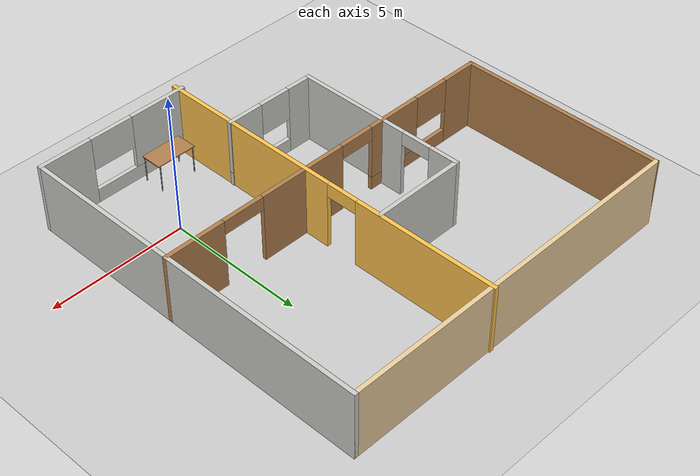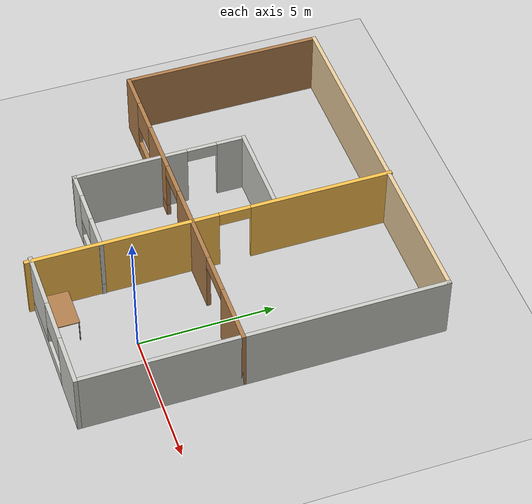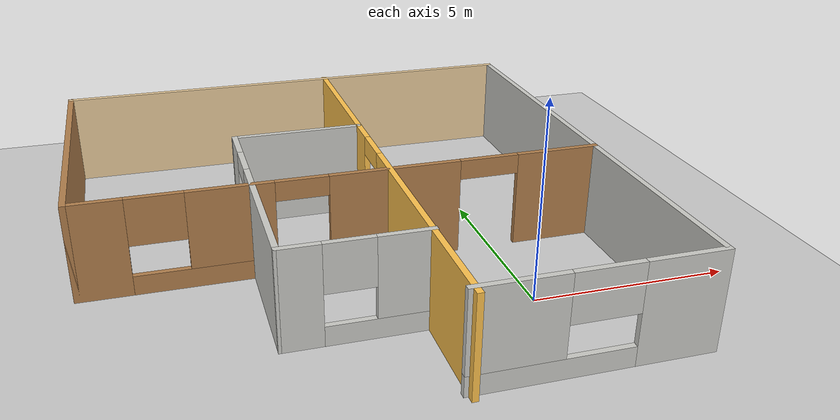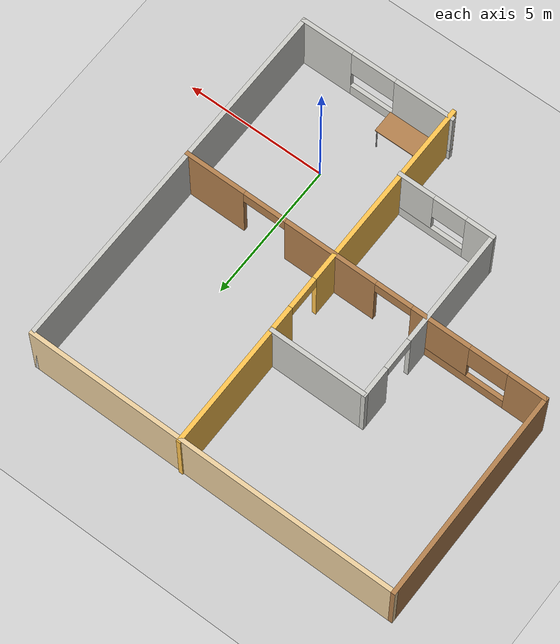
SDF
<sdf version="1.6">
 <world name="default">
  <light name="sun" type="directional">
   <pose>0 0 10 0 -0 0</pose>
   <diffuse>0.8 0.8 0.8 1</diffuse>
   <specular>0.2 0.2 0.2 1</specular>
   <attenuation>
    <range>1000</range>
    <constant>0.9</constant>
    <linear>0.01</linear>
    <quadratic>0.001</quadratic>
   </attenuation>
   <direction>-0.5 0.1 -0.9</direction>
  </light>
  <model name="ground_plane">
   <static>1</static>
   <link name="link">
    <collision name="collision">
     <geometry><plane><normal>0 0 1</normal><size>100 100</size></plane></geometry>
     <surface><friction><ode><mu>100</mu><mu2>50</mu2></ode></friction></surface>
    </collision>
    <visual name="visual">
     <cast_shadows>0</cast_shadows>
     <geometry><plane><normal>0 0 1</normal><size>100 100</size></plane></geometry>
     <material>
      <script><uri>file://media/materials/scripts/gazebo.material</uri><name>Gazebo/Grey</name></script>
     </material>
    </visual>
   </link>
  </model>
  <gravity>0 0 -9.8</gravity>
  <magnetic_field>6e-06 2.3e-05 -4.2e-05</magnetic_field>
  <atmosphere type="adiabatic"/>
  <physics name="default_physics" default="0" type="ode">
   <max_step_size>0.001</max_step_size>
   <real_time_factor>1</real_time_factor>
   <real_time_update_rate>1000</real_time_update_rate>
  </physics>
  <scene><ambient>0.4 0.4 0.4 1</ambient><background>0.7 0.7 0.7 1</background><shadows>1</shadows></scene>
  <audio><device>default</device></audio>
  <spherical_coordinates>
   <surface_model>EARTH_WGS84</surface_model>
   <latitude_deg>0</latitude_deg>
   <longitude_deg>0</longitude_deg>
   <elevation>0</elevation>
   <heading_deg>0</heading_deg>
  </spherical_coordinates>
  <model name="Robot_House">
   <pose>-3.73296 3.60098 0 0 -0 0</pose>
   <link name="Wall_0">
    <collision name="Wall_0_Collision">
     <geometry><box><size>13.25 0.15 2.5</size></box></geometry>
     <pose>0 0 1.25 0 -0 0</pose>
    </collision>
    <visual name="Wall_0_Visual">
     <pose>0 0 1.25 0 -0 0</pose>
     <geometry><box><size>13.25 0.15 2.5</size></box></geometry>
     <material>
      <script><uri>file://media/materials/scripts/gazebo.material</uri><name>Gazebo/Grey</name></script>
      <ambient>0.921569 0.807843 0.615686 1</ambient>
     </material>
     <meta><layer>0</layer></meta>
    </visual>
    <pose>-0 6.627 0 0 -0 0</pose>
   </link>
   <link name="Wall_1">
    <collision name="Wall_1_Collision">
     <geometry><box><size>13.263 0.15 2.5</size></box></geometry>
     <pose>0 0 1.25 0 -0 0</pose>
    </collision>
    <visual name="Wall_1_Visual">
     <pose>0 0 1.25 0 -0 0</pose>
     <geometry><box><size>13.263 0.15 2.5</size></box></geometry>
     <material>
      <script><uri>file://media/materials/scripts/gazebo.material</uri><name>Gazebo/CeilingTiled</name></script>
      <ambient>0.921569 0.807843 0.615686 1</ambient>
     </material>
     <meta><layer>0</layer></meta>
    </visual>
    <pose>6.55 0.0705 0 0 -0 -1.5708</pose>
   </link>
   <link name="Wall_20">
    <pose>1.055 0 0 0 -0 1.5708</pose>
    <visual name="Wall_20_Visual_0">
     <pose>-3.24261 0 1.25 0 -0 0</pose>
     <geometry><box><size>7.01478 0.15 2.5</size></box></geometry>
     <material>
      <script><uri>file://media/materials/scripts/gazebo.material</uri><name>Gazebo/Grey</name></script>
      <ambient>1 0.764706 0.305882 1</ambient>
     </material>
     <meta><layer>0</layer></meta>
    </visual>
    <collision name="Wall_20_Collision_0">
     <geometry><box><size>7.01478 0.15 2.5</size></box></geometry>
     <pose>-3.24261 0 1.25 0 -0 0</pose>
    </collision>
    <visual name="Wall_20_Visual_1">
     <pose>4.08964 0 1.25 0 -0 0</pose>
     <geometry><box><size>5.32073 0.15 2.5</size></box></geometry>
     <material>
      <script><uri>file://media/materials/scripts/gazebo.material</uri><name>Gazebo/Grey</name></script>
      <ambient>1 0.764706 0.305882 1</ambient>
     </material>
     <meta><layer>0</layer></meta>
    </visual>
    <collision name="Wall_20_Collision_1">
     <geometry><box><size>5.32073 0.15 2.5</size></box></geometry>
     <pose>4.08964 0 1.25 0 -0 0</pose>
    </collision>
    <visual name="Wall_20_Visual_2">
     <pose>0.847025 0 2.25 0 -0 0</pose>
     <geometry><box><size>1.1645 0.15 0.5</size></box></geometry>
     <material>
      <script><uri>file://media/materials/scripts/gazebo.material</uri><name>Gazebo/Grey</name></script>
      <ambient>1 0.764706 0.305882 1</ambient>
     </material>
     <meta><layer>0</layer></meta>
    </visual>
    <collision name="Wall_20_Collision_2">
     <geometry><box><size>1.1645 0.15 0.5</size></box></geometry>
     <pose>0.847025 0 2.25 0 -0 0</pose>
    </collision>
   </link>
   <link name="Wall_22">
    <pose>-2.318 -0.839 0 0 -0 -1.5708</pose>
    <visual name="Wall_22_Visual_0">
     <pose>-2.68981 0 1.25 0 -0 0</pose>
     <geometry><box><size>1.12039 0.15 2.5</size></box></geometry>
     <material>
      <script><uri>file://media/materials/scripts/gazebo.material</uri><name>Gazebo/CeilingTiled</name></script>
      <ambient>0.921569 0.807843 0.615686 1</ambient>
     </material>
     <meta><layer>0</layer></meta>
    </visual>
    <collision name="Wall_22_Collision_0">
     <geometry><box><size>1.12039 0.15 2.5</size></box></geometry>
     <pose>-2.68981 0 1.25 0 -0 0</pose>
    </collision>
    <visual name="Wall_22_Visual_1">
     <pose>1.11619 0 1.25 0 -0 0</pose>
     <geometry><box><size>4.26761 0.15 2.5</size></box></geometry>
     <material>
      <script><uri>file://media/materials/scripts/gazebo.material</uri><name>Gazebo/CeilingTiled</name></script>
      <ambient>0.921569 0.807843 0.615686 1</ambient>
     </material>
     <meta><layer>0</layer></meta>
    </visual>
    <collision name="Wall_22_Collision_1">
     <geometry><box><size>4.26761 0.15 2.5</size></box></geometry>
     <pose>1.11619 0 1.25 0 -0 0</pose>
    </collision>
    <visual name="Wall_22_Visual_2">
     <pose>-1.57361 0 2.25 0 -0 0</pose>
     <geometry><box><size>1.112 0.15 0.5</size></box></geometry>
     <material>
      <script><uri>file://media/materials/scripts/gazebo.material</uri><name>Gazebo/CeilingTiled</name></script>
      <ambient>0.921569 0.807843 0.615686 1</ambient>
     </material>
     <meta><layer>0</layer></meta>
    </visual>
    <collision name="Wall_22_Collision_2">
     <geometry><box><size>1.112 0.15 0.5</size></box></geometry>
     <pose>-1.57361 0 2.25 0 -0 0</pose>
    </collision>
   </link>
   <link name="Wall_23">
    <pose>-0.62 -4.0195 0 0 -0 -0.003239</pose>
    <visual name="Wall_23_Visual_0">
     <pose>-1.26198 0 1.25 0 -0 0</pose>
     <geometry><box><size>1.02235 0.15 2.5</size></box></geometry>
     <material>
      <script><uri>file://media/materials/scripts/gazebo.material</uri><name>Gazebo/CeilingTiled</name></script>
      <ambient>0.435294 0.796078 0.67451 1</ambient>
     </material>
     <meta><layer>0</layer></meta>
    </visual>
    <collision name="Wall_23_Collision_0">
     <geometry><box><size>1.02235 0.15 2.5</size></box></geometry>
     <pose>-1.26198 0 1.25 0 -0 0</pose>
    </collision>
    <visual name="Wall_23_Visual_1">
     <pose>0.511177 0 0.25 0 -0 0</pose>
     <geometry><box><size>2.52396 0.15 0.5</size></box></geometry>
     <material>
      <script><uri>file://media/materials/scripts/gazebo.material</uri><name>Gazebo/CeilingTiled</name></script>
      <ambient>0.435294 0.796078 0.67451 1</ambient>
     </material>
     <meta><layer>0</layer></meta>
    </visual>
    <collision name="Wall_23_Collision_1">
     <geometry><box><size>2.52396 0.15 0.5</size></box></geometry>
     <pose>0.511177 0 0.25 0 -0 0</pose>
    </collision>
    <visual name="Wall_23_Visual_2">
     <pose>1.10093 0 1.5 0 -0 0</pose>
     <geometry><box><size>1.34446 0.15 2</size></box></geometry>
     <material>
      <script><uri>file://media/materials/scripts/gazebo.material</uri><name>Gazebo/CeilingTiled</name></script>
      <ambient>0.435294 0.796078 0.67451 1</ambient>
     </material>
     <meta><layer>0</layer></meta>
    </visual>
    <collision name="Wall_23_Collision_2">
     <geometry><box><size>1.34446 0.15 2</size></box></geometry>
     <pose>1.10093 0 1.5 0 -0 0</pose>
    </collision>
    <visual name="Wall_23_Visual_3">
     <pose>-0.161052 0 1.9 0 -0 0</pose>
     <geometry><box><size>1.1795 0.15 1.2</size></box></geometry>
     <material>
      <script><uri>file://media/materials/scripts/gazebo.material</uri><name>Gazebo/CeilingTiled</name></script>
      <ambient>0.435294 0.796078 0.67451 1</ambient>
     </material>
     <meta><layer>0</layer></meta>
    </visual>
    <collision name="Wall_23_Collision_3">
     <geometry><box><size>1.1795 0.15 1.2</size></box></geometry>
     <pose>-0.161052 0 1.9 0 -0 0</pose>
    </collision>
   </link>
   <link name="Wall_36">
    <collision name="Wall_36_Collision">
     <geometry><box><size>3.5 0.15 2.5</size></box></geometry>
     <pose>0 0 1.25 0 -0 0</pose>
    </collision>
    <visual name="Wall_36_Visual">
     <pose>0 0 1.25 0 -0 0</pose>
     <geometry><box><size>3.5 0.15 2.5</size></box></geometry>
     <material>
      <script><uri>file://media/materials/scripts/gazebo.material</uri><name>Gazebo/CeilingTiled</name></script>
      <ambient>0.921569 0.807843 0.615686 1</ambient>
     </material>
     <meta><layer>0</layer></meta>
    </visual>
    <pose>-0.643 2.336 0 0 -0 0</pose>
   </link>
   <link name="Wall_38">
    <pose>3.75 -6.486 0 0 -0 3.14159</pose>
    <visual name="Wall_38_Visual_0">
     <pose>-1.9017 0 1.25 0 -0 0</pose>
     <geometry><box><size>1.9466 0.15 2.5</size></box></geometry>
     <material>
      <script><uri>file://media/materials/scripts/gazebo.material</uri><name>Gazebo/CeilingTiled</name></script>
      <ambient>1 0.764706 0.305882 1</ambient>
     </material>
     <meta><layer>0</layer></meta>
    </visual>
    <collision name="Wall_38_Collision_0">
     <geometry><box><size>1.9466 0.15 2.5</size></box></geometry>
     <pose>-1.9017 0 1.25 0 -0 0</pose>
    </collision>
    <visual name="Wall_38_Visual_1">
     <pose>0.973302 0 0.25 0 -0 0</pose>
     <geometry><box><size>3.8034 0.15 0.5</size></box></geometry>
     <material>
      <script><uri>file://media/materials/scripts/gazebo.material</uri><name>Gazebo/CeilingTiled</name></script>
      <ambient>1 0.764706 0.305882 1</ambient>
     </material>
     <meta><layer>0</layer></meta>
    </visual>
    <collision name="Wall_38_Collision_1">
     <geometry><box><size>3.8034 0.15 0.5</size></box></geometry>
     <pose>0.973302 0 0.25 0 -0 0</pose>
    </collision>
    <visual name="Wall_38_Visual_2">
     <pose>1.7783 0 1.5 0 -0 0</pose>
     <geometry><box><size>2.1934 0.15 2</size></box></geometry>
     <material>
      <script><uri>file://media/materials/scripts/gazebo.material</uri><name>Gazebo/CeilingTiled</name></script>
      <ambient>1 0.764706 0.305882 1</ambient>
     </material>
     <meta><layer>0</layer></meta>
    </visual>
    <collision name="Wall_38_Collision_2">
     <geometry><box><size>2.1934 0.15 2</size></box></geometry>
     <pose>1.7783 0 1.5 0 -0 0</pose>
    </collision>
    <visual name="Wall_38_Visual_3">
     <pose>-0.123395 0 1.9 0 -0 0</pose>
     <geometry><box><size>1.61 0.15 1.2</size></box></geometry>
     <material>
      <script><uri>file://media/materials/scripts/gazebo.material</uri><name>Gazebo/CeilingTiled</name></script>
      <ambient>1 0.764706 0.305882 1</ambient>
     </material>
     <meta><layer>0</layer></meta>
    </visual>
    <collision name="Wall_38_Collision_3">
     <geometry><box><size>1.61 0.15 1.2</size></box></geometry>
     <pose>-0.123395 0 1.9 0 -0 0</pose>
    </collision>
   </link>
   <link name="Wall_4">
    <collision name="Wall_4_Collision">
     <geometry><box><size>7.5 0.15 2.5</size></box></geometry>
     <pose>0 0 1.25 0 -0 0</pose>
    </collision>
    <visual name="Wall_4_Visual">
     <pose>0 0 1.25 0 -0 0</pose>
     <geometry><box><size>7.5 0.15 2.5</size></box></geometry>
     <material>
      <script><uri>file://media/materials/scripts/gazebo.material</uri><name>Gazebo/Wood</name></script>
      <ambient>1 1 1 1</ambient>
     </material>
     <meta><layer>0</layer></meta>
    </visual>
    <pose>-6.55 2.952 0 0 -0 -1.5708</pose>
   </link>
   <link name="Wall_5">
    <pose>-0 -0.723 0 0 -0 0</pose>
    <visual name="Wall_5_Visual_0">
     <pose>-5.93459 0 1.25 0 -0 0</pose>
     <geometry><box><size>1.38081 0.15 2.5</size></box></geometry>
     <material>
      <script><uri>file://media/materials/scripts/gazebo.material</uri><name>Gazebo/Wood</name></script>
      <ambient>1 1 1 1</ambient>
     </material>
     <meta><layer>0</layer></meta>
    </visual>
    <collision name="Wall_5_Collision_0">
     <geometry><box><size>1.38081 0.15 2.5</size></box></geometry>
     <pose>-5.93459 0 1.25 0 -0 0</pose>
    </collision>
    <visual name="Wall_5_Visual_1">
     <pose>1.19519 0 1.25 0 -0 0</pose>
     <geometry><box><size>3.33861 0.15 2.5</size></box></geometry>
     <material>
      <script><uri>file://media/materials/scripts/gazebo.material</uri><name>Gazebo/Wood</name></script>
      <ambient>1 1 1 1</ambient>
     </material>
     <meta><layer>0</layer></meta>
    </visual>
    <collision name="Wall_5_Collision_1">
     <geometry><box><size>3.33861 0.15 2.5</size></box></geometry>
     <pose>1.19519 0 1.25 0 -0 0</pose>
    </collision>
    <visual name="Wall_5_Visual_2">
     <pose>5.51215 0 1.25 0 -0 0</pose>
     <geometry><box><size>2.2257 0.15 2.5</size></box></geometry>
     <material>
      <script><uri>file://media/materials/scripts/gazebo.material</uri><name>Gazebo/Wood</name></script>
      <ambient>1 1 1 1</ambient>
     </material>
     <meta><layer>0</layer></meta>
    </visual>
    <collision name="Wall_5_Collision_2">
     <geometry><box><size>2.2257 0.15 2.5</size></box></geometry>
     <pose>5.51215 0 1.25 0 -0 0</pose>
    </collision>
    <visual name="Wall_5_Visual_3">
     <pose>-3.51414 0 0.25 0 -0 0</pose>
     <geometry><box><size>3.4601 0.15 0.5</size></box></geometry>
     <material>
      <script><uri>file://media/materials/scripts/gazebo.material</uri><name>Gazebo/Wood</name></script>
      <ambient>1 1 1 1</ambient>
     </material>
     <meta><layer>0</layer></meta>
    </visual>
    <collision name="Wall_5_Collision_3">
     <geometry><box><size>3.4601 0.15 0.5</size></box></geometry>
     <pose>-3.51414 0 0.25 0 -0 0</pose>
    </collision>
    <visual name="Wall_5_Visual_4">
     <pose>-2.83264 0 1.5 0 -0 0</pose>
     <geometry><box><size>2.0971 0.15 2</size></box></geometry>
     <material>
      <script><uri>file://media/materials/scripts/gazebo.material</uri><name>Gazebo/Wood</name></script>
      <ambient>1 1 1 1</ambient>
     </material>
     <meta><layer>0</layer></meta>
    </visual>
    <collision name="Wall_5_Collision_4">
     <geometry><box><size>2.0971 0.15 2</size></box></geometry>
     <pose>-2.83264 0 1.5 0 -0 0</pose>
    </collision>
    <visual name="Wall_5_Visual_5">
     <pose>-4.56269 0 1.9 0 -0 0</pose>
     <geometry><box><size>1.363 0.15 1.2</size></box></geometry>
     <material>
      <script><uri>file://media/materials/scripts/gazebo.material</uri><name>Gazebo/Wood</name></script>
      <ambient>1 1 1 1</ambient>
     </material>
     <meta><layer>0</layer></meta>
    </visual>
    <collision name="Wall_5_Collision_5">
     <geometry><box><size>1.363 0.15 1.2</size></box></geometry>
     <pose>-4.56269 0 1.9 0 -0 0</pose>
    </collision>
    <visual name="Wall_5_Visual_6">
     <pose>3.6319 0 2.25 0 -0 0</pose>
     <geometry><box><size>1.5348 0.15 0.5</size></box></geometry>
     <material>
      <script><uri>file://media/materials/scripts/gazebo.material</uri><name>Gazebo/Wood</name></script>
      <ambient>1 1 1 1</ambient>
     </material>
     <meta><layer>0</layer></meta>
    </visual>
    <collision name="Wall_5_Collision_6">
     <geometry><box><size>1.5348 0.15 0.5</size></box></geometry>
     <pose>3.6319 0 2.25 0 -0 0</pose>
    </collision>
    <visual name="Wall_5_Visual_7">
     <pose>-1.1291 0 2.25 0 -0 0</pose>
     <geometry><box><size>1.30997 0.15 0.5</size></box></geometry>
     <material>
      <script><uri>file://media/materials/scripts/gazebo.material</uri><name>Gazebo/Wood</name></script>
      <ambient>1 1 1 1</ambient>
     </material>
     <meta><layer>0</layer></meta>
    </visual>
    <collision name="Wall_5_Collision_7">
     <geometry><box><size>1.30997 0.15 0.5</size></box></geometry>
     <pose>-1.1291 0 2.25 0 -0 0</pose>
    </collision>
   </link>
   <static>1</static>
  </model>
  <model name="table">
   <static>1</static>
   <link name="link">
    <collision name="surface">
     <pose>0 0 1 0 -0 0</pose>
     <geometry><box><size>1.5 0.8 0.03</size></box></geometry>
     <surface><friction><ode><mu>0.6</mu><mu2>0.6</mu2></ode></friction></surface>
    </collision>
    <visual name="visual1">
     <pose>0 0 1 0 -0 0</pose>
     <geometry><box><size>1.5 0.8 0.03</size></box></geometry>
     <material>
      <script><uri>file://media/materials/scripts/gazebo.material</uri><name>Gazebo/Wood</name></script>
     </material>
    </visual>
    <collision name="front_left_leg">
     <pose>0.68 0.38 0.5 0 -0 0</pose>
     <geometry><cylinder><radius>0.02</radius><length>1</length></cylinder></geometry>
    </collision>
    <visual name="front_left_leg">
     <pose>0.68 0.38 0.5 0 -0 0</pose>
     <geometry><cylinder><radius>0.02</radius><length>1</length></cylinder></geometry>
     <material>
      <script><uri>file://media/materials/scripts/gazebo.material</uri><name>Gazebo/Grey</name></script>
     </material>
    </visual>
    <collision name="front_right_leg">
     <pose>0.68 -0.38 0.5 0 -0 0</pose>
     <geometry><cylinder><radius>0.02</radius><length>1</length></cylinder></geometry>
    </collision>
    <visual name="front_right_leg">
     <pose>0.68 -0.38 0.5 0 -0 0</pose>
     <geometry><cylinder><radius>0.02</radius><length>1</length></cylinder></geometry>
     <material>
      <script><uri>file://media/materials/scripts/gazebo.material</uri><name>Gazebo/Grey</name></script>
     </material>
    </visual>
    <collision name="back_right_leg">
     <pose>-0.68 -0.38 0.5 0 -0 0</pose>
     <geometry><cylinder><radius>0.02</radius><length>1</length></cylinder></geometry>
    </collision>
    <visual name="back_right_leg">
     <pose>-0.68 -0.38 0.5 0 -0 0</pose>
     <geometry><cylinder><radius>0.02</radius><length>1</length></cylinder></geometry>
     <material>
      <script><uri>file://media/materials/scripts/gazebo.material</uri><name>Gazebo/Grey</name></script>
     </material>
    </visual>
    <collision name="back_left_leg">
     <pose>-0.68 0.38 0.5 0 -0 0</pose>
     <geometry><cylinder><radius>0.02</radius><length>1</length></cylinder></geometry>
    </collision>
    <visual name="back_left_leg">
     <pose>-0.68 0.38 0.5 0 -0 0</pose>
     <geometry><cylinder><radius>0.02</radius><length>1</length></cylinder></geometry>
     <material>
      <script><uri>file://media/materials/scripts/gazebo.material</uri><name>Gazebo/Grey</name></script>
     </material>
    </visual>
   </link>
   <pose>-1.48824 -2.19589 0 0 -0 0</pose>
  </model>
 </world>
</sdf>
